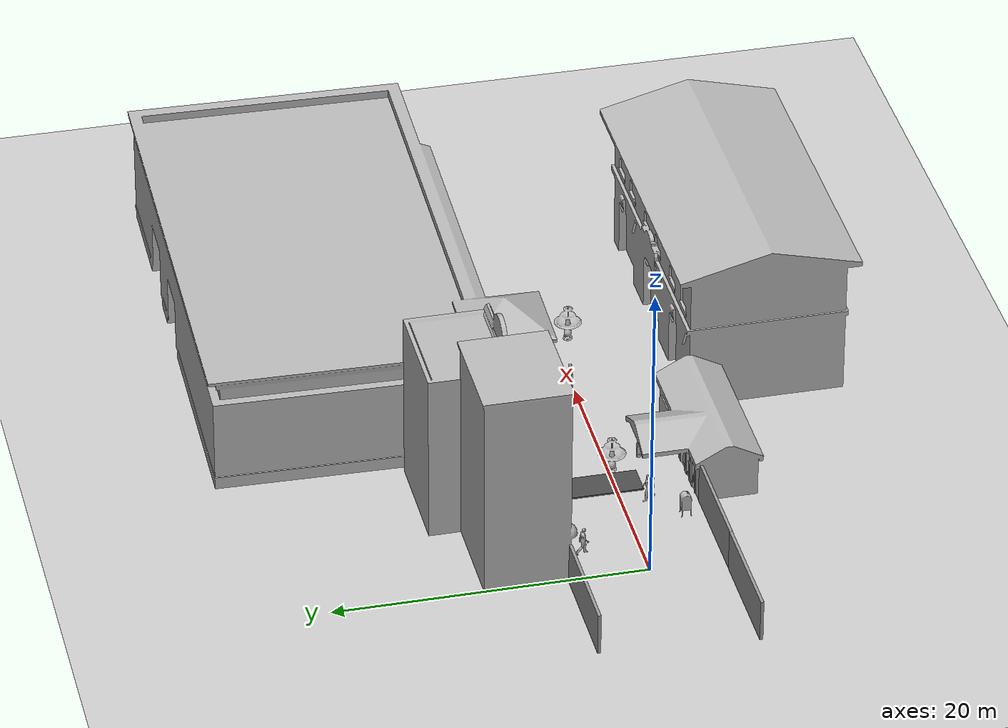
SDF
<sdf version="1.6">
 <world name="default">
  <light name="sun" type="directional">
   <pose>0 0 10 0 -0 0</pose>
   <diffuse>0.8 0.8 0.8 1</diffuse>
   <specular>0.2 0.2 0.2 1</specular>
   <attenuation>
    <range>1000</range>
    <constant>0.9</constant>
    <linear>0.01</linear>
    <quadratic>0.001</quadratic>
   </attenuation>
   <direction>-0.5 0.1 -0.9</direction>
  </light>
  <physics name="default_physics" default="0" type="ode">
   <max_step_size>0.001</max_step_size>
   <real_time_factor>1</real_time_factor>
   <real_time_update_rate>1000</real_time_update_rate>
  </physics>
  <scene><ambient>0.4 0.4 0.4 1</ambient><background>0.7 0.7 0.7 1</background><shadows>0</shadows></scene>
  <magnetic_field>6e-06 2.3e-05 -4.2e-05</magnetic_field>
  <atmosphere type="adiabatic"/>
  <spherical_coordinates>
   <surface_model>EARTH_WGS84</surface_model>
   <latitude_deg>0</latitude_deg>
   <longitude_deg>0</longitude_deg>
   <elevation>0</elevation>
   <heading_deg>0</heading_deg>
  </spherical_coordinates>
  <gravity>0 0 -9.8</gravity>
  <model name="postbox">
   <static>1</static>
   <link name="link">
    <collision name="collision">
     <geometry><mesh><uri>model://postbox/meshes/postbox.dae</uri></mesh></geometry>
    </collision>
    <visual name="visual"><geometry><mesh><uri>model://postbox/meshes/postbox.dae</uri></mesh></geometry></visual>
   </link>
   <pose>5.3446 -3.59465 0 0 -0 0</pose>
  </model>
  <model name="salon">
   <static>1</static>
   <link name="link">
    <collision name="collision">
     <pose>0 0 5.69469 0 -0 0</pose>
     <geometry><box><size>7.21297 5.37875 11.3894</size></box></geometry>
    </collision>
    <visual name="visual">
     <pose>0 -0.903605 0 0 -0 0</pose>
     <geometry><mesh><uri>model://salon/meshes/salon.dae</uri></mesh></geometry>
    </visual>
   </link>
   <pose>10.13 9.79459 0 0 -0 0</pose>
  </model>
  <model name="ground_plane">
   <static>1</static>
   <link name="link">
    <collision name="collision">
     <geometry><plane><normal>0 0 1</normal><size>100 100</size></plane></geometry>
     <surface>
      <contact><collide_bitmask>65535</collide_bitmask></contact>
      <friction><ode><mu>100</mu><mu2>50</mu2></ode></friction>
     </surface>
    </collision>
    <visual name="visual">
     <cast_shadows>0</cast_shadows>
     <geometry><plane><normal>0 0 1</normal><size>100 100</size></plane></geometry>
     <material>
      <script><uri>file://media/materials/scripts/gazebo.material</uri><name>Gazebo/Grey</name></script>
     </material>
    </visual>
   </link>
   <pose>13.0074 4.52832 0 0 -0 0</pose>
  </model>
  <model name="person_standing">
   <link name="link">
    <inertial>
     <pose>0 -0.1 0.95 0 -0 0</pose>
     <mass>80</mass>
     <inertia><ixx>24.88</ixx><ixy>0</ixy><ixz>0</ixz><iyy>25.73</iyy><iyz>0</iyz><izz>2.48</izz></inertia>
    </inertial>
    <collision name="bottom">
     <pose>0 -0.1 0.01 0 -0 0</pose>
     <geometry><box><size>0.5 0.35 0.02</size></box></geometry>
    </collision>
    <collision name="person">
     <pose>0 0 0.02 0.04 -0 0</pose>
     <geometry><mesh><uri>model://person_standing/meshes/standing.dae</uri></mesh></geometry>
    </collision>
    <visual name="visual">
     <pose>0 0 0.02 0.04 -0 0</pose>
     <geometry><mesh><uri>model://person_standing/meshes/standing.dae</uri></mesh></geometry>
    </visual>
   </link>
   <pose>20.2027 0.128716 0.05 1e-06 1e-06 3.11939</pose>
  </model>
  <model name="person_standing_0">
   <link name="link">
    <inertial>
     <pose>0 -0.1 0.95 0 -0 0</pose>
     <mass>80</mass>
     <inertia><ixx>24.88</ixx><ixy>0</ixy><ixz>0</ixz><iyy>25.73</iyy><iyz>0</iyz><izz>2.48</izz></inertia>
    </inertial>
    <collision name="bottom">
     <pose>0 -0.1 0.01 0 -0 0</pose>
     <geometry><box><size>0.5 0.35 0.02</size></box></geometry>
    </collision>
    <collision name="person">
     <pose>0 0 0.02 0.04 -0 0</pose>
     <geometry><mesh><uri>model://person_standing/meshes/standing.dae</uri></mesh></geometry>
    </collision>
    <visual name="visual">
     <pose>0 0 0.02 0.04 -0 0</pose>
     <geometry><mesh><uri>model://person_standing/meshes/standing.dae</uri></mesh></geometry>
    </visual>
   </link>
   <pose>20.5535 0.974537 0.05 -1e-06 -1e-06 0.007158</pose>
  </model>
  <model name="person_walking">
   <link name="link">
    <inertial>
     <pose>0 0 0.95 0 -0 0</pose>
     <mass>80</mass>
     <inertia><ixx>27.82</ixx><ixy>0</ixy><ixz>0</ixz><iyy>24.88</iyy><iyz>0</iyz><izz>4.57</izz></inertia>
    </inertial>
    <collision name="bottom">
     <pose>0 0 0.01 0 -0 0</pose>
     <geometry><box><size>0.35 0.75 0.02</size></box></geometry>
    </collision>
    <collision name="person">
     <pose>0 0 -0.02 0 -0 0</pose>
     <geometry><mesh><uri>model://person_walking/meshes/walking.dae</uri></mesh></geometry>
    </collision>
    <visual name="visual">
     <pose>0 0 -0.02 0 -0 0</pose>
     <geometry><mesh><uri>model://person_walking/meshes/walking.dae</uri></mesh></geometry>
    </visual>
   </link>
   <pose>2.52583 3.67495 0.049999 -2e-06 1e-06 0.023872</pose>
  </model>
  <model name="person_walking_0">
   <link name="link">
    <inertial>
     <pose>0 0 0.95 0 -0 0</pose>
     <mass>80</mass>
     <inertia><ixx>27.82</ixx><ixy>0</ixy><ixz>0</ixz><iyy>24.88</iyy><iyz>0</iyz><izz>4.57</izz></inertia>
    </inertial>
    <collision name="bottom">
     <pose>0 0 0.01 0 -0 0</pose>
     <geometry><box><size>0.35 0.75 0.02</size></box></geometry>
    </collision>
    <collision name="person">
     <pose>0 0 -0.02 0 -0 0</pose>
     <geometry><mesh><uri>model://person_walking/meshes/walking.dae</uri></mesh></geometry>
    </collision>
    <visual name="visual">
     <pose>0 0 -0.02 0 -0 0</pose>
     <geometry><mesh><uri>model://person_walking/meshes/walking.dae</uri></mesh></geometry>
    </visual>
   </link>
   <pose>7.22576 -1.68809 0.05 -1e-06 -0 -3.07545</pose>
  </model>
  <model name="post_office">
   <static>1</static>
   <link name="link">
    <collision name="collision">
     <geometry><mesh><uri>model://post_office/meshes/post_office.dae</uri></mesh></geometry>
    </collision>
    <visual name="visual">
     <geometry><mesh><uri>model://post_office/meshes/post_office.dae</uri></mesh></geometry>
    </visual>
   </link>
   <pose>11.4971 -6.62369 0 0 -0 0</pose>
  </model>
  <model name="asphalt_plane">
   <static>1</static>
   <link name="link">
    <collision name="collision"><geometry><box><size>2.09106 5.20002 0.1</size></box></geometry></collision>
    <visual name="visual">
     <cast_shadows>0</cast_shadows>
     <geometry><box><size>2.09106 5.20002 0.1</size></box></geometry>
     <material>
      <script>
       <uri>model://asphalt_plane/materials/scripts</uri>
       <uri>model://asphalt_plane/materials/textures</uri>
       <name>vrc/asphalt</name>
      </script>
     </material>
    </visual>
   </link>
   <pose>9.49051 0.894662 0 0 -0 0</pose>
  </model>
  <model name="fire_station">
   <static>1</static>
   <link name="link">
    <collision name="main">
     <pose>0 -0.135 5 0 -0 0</pose>
     <geometry><box><size>19.98 9.68 10</size></box></geometry>
    </collision>
    <collision name="front_top">
     <pose>0 4.957 7 0 -0 0</pose>
     <geometry><box><size>20 0.515 6</size></box></geometry>
    </collision>
    <collision name="column_0">
     <pose>9.333 4.957 2 0 -0 0</pose>
     <geometry><box><size>1.315 0.515 4</size></box></geometry>
    </collision>
    <collision name="column_1">
     <pose>3.33 4.957 2 0 -0 0</pose>
     <geometry><box><size>2.63 0.515 4</size></box></geometry>
    </collision>
    <collision name="column_2">
     <pose>-3.33 4.957 2 0 -0 0</pose>
     <geometry><box><size>2.63 0.515 4</size></box></geometry>
    </collision>
    <collision name="column_3">
     <pose>-9.333 4.957 2 0 -0 0</pose>
     <geometry><box><size>1.315 0.515 4</size></box></geometry>
    </collision>
    <collision name="roof_back">
     <pose>0 -2.742 10.467 0.25 -0 0</pose>
     <geometry><box><size>21.47 6.12 0.28</size></box></geometry>
    </collision>
    <collision name="roof_front">
     <pose>0 3.12 10.467 -0.25 0 0</pose>
     <geometry><box><size>21.47 6.12 0.28</size></box></geometry>
    </collision>
    <collision name="roof_base">
     <pose>0 0.188 9.705 0 -0 0</pose>
     <geometry><box><size>21.47 11.86 0.28</size></box></geometry>
    </collision>
    <collision name="roof_filling_0">
     <pose>0 0.188 9.985 0 -0 0</pose>
     <geometry><box><size>21.47 9.53 0.28</size></box></geometry>
    </collision>
    <collision name="roof_filling_1">
     <pose>0 0.188 10.14 0 -0 0</pose>
     <geometry><box><size>21.47 8.41 0.28</size></box></geometry>
    </collision>
    <collision name="roof_filling_2">
     <pose>0 0.188 10.42 0 -0 0</pose>
     <geometry><box><size>21.47 6.25 0.28</size></box></geometry>
    </collision>
    <collision name="roof_filling_3">
     <pose>0 0.188 10.7 0 -0 0</pose>
     <geometry><box><size>21.47 4.05 0.28</size></box></geometry>
    </collision>
    <collision name="roof_filling_4">
     <pose>0 0.188 10.98 0 -0 0</pose>
     <geometry><box><size>21.47 1.83 0.28</size></box></geometry>
    </collision>
    <visual name="visual">
     <geometry><mesh><uri>model://fire_station/meshes/fire_station.dae</uri></mesh></geometry>
    </visual>
   </link>
   <pose>26.6985 -11.9199 0 0 -0 0</pose>
  </model>
  <model name="first_2015_trash_can">
   <link name="link">
    <inertial>
     <pose>0 0 0.3683 0 -0 0</pose>
     <mass>4.83076</mass>
     <inertia>
      <ixx>0.281534</ixx>
      <ixy>0</ixy>
      <ixz>0</ixz>
      <iyy>0.281534</iyy>
      <iyz>0</iyz>
      <izz>0.126223</izz>
     </inertia>
    </inertial>
    <visual name="visual">
     <geometry><mesh><uri>model://first_2015_trash_can/meshes/trash_can.dae</uri></mesh></geometry>
    </visual>
    <collision name="collision">
     <geometry><mesh><uri>model://first_2015_trash_can/meshes/trash_can.dae</uri></mesh></geometry>
    </collision>
   </link>
   <pose>7.00988 6.83396 0.073262 0.071833 0.078797 -0.145448</pose>
  </model>
  <model name="fountain">
   <static>1</static>
   <link name="link">
    <collision name="collision">
     <geometry><mesh><uri>model://fountain/meshes/fountain.dae</uri></mesh></geometry>
    </collision>
    <visual name="visual">
     <geometry><mesh><uri>model://fountain/meshes/fountain.dae</uri></mesh></geometry>
    </visual>
   </link>
   <pose>26 -1 0 0 -0 0</pose>
  </model>
  <model name="grocery_store">
   <static>1</static>
   <link name="link">
    <collision name="collision">
     <pose>0 0 4.04605 0 -0 0</pose>
     <geometry><box><size>32.1985 17.5425 8.09209</size></box></geometry>
    </collision>
    <visual name="visual">
     <pose>0 -1.96155 0 0 -0 0</pose>
     <geometry><mesh><uri>model://grocery_store/meshes/grocery_store.dae</uri></mesh></geometry>
    </visual>
   </link>
   <pose>30.2818 15.2736 0 0 -0 3.11799</pose>
  </model>
  <model name="law_office">
   <static>1</static>
   <link name="link">
    <collision name="collision">
     <pose>0 0 6.96244 0 -0 0</pose>
     <geometry><box><size>6.84401 5.43165 13.9249</size></box></geometry>
    </collision>
    <visual name="visual">
     <geometry><mesh><uri>model://law_office/meshes/law_office.dae</uri></mesh></geometry>
    </visual>
   </link>
   <pose>3.34954 7.72892 0 0 -0 0</pose>
  </model>
  <model name="grey_wall">
   <static>1</static>
   <link name="link">
    <pose>0 0 1.4 0 -0 0</pose>
    <collision name="collision"><geometry><box><size>7.5 0.2 2.8</size></box></geometry></collision>
    <visual name="visual">
     <cast_shadows>0</cast_shadows>
     <geometry><box><size>7.5 0.2 2.8</size></box></geometry>
     <material>
      <script>
       <uri>model://grey_wall/materials/scripts</uri>
       <uri>model://grey_wall/materials/textures</uri>
       <name>vrc/grey_wall</name>
      </script>
     </material>
    </visual>
   </link>
   <pose>2.7814 -4.82123 0 0 -0 0</pose>
  </model>
  <model name="grey_wall_clone">
   <static>1</static>
   <link name="link">
    <pose>0 0 1.4 0 -0 0</pose>
    <collision name="collision"><geometry><box><size>7.5 0.2 2.8</size></box></geometry></collision>
    <visual name="visual">
     <cast_shadows>0</cast_shadows>
     <geometry><box><size>7.5 0.2 2.8</size></box></geometry>
     <material>
      <script>
       <uri>model://grey_wall/materials/scripts</uri>
       <uri>model://grey_wall/materials/textures</uri>
       <name>vrc/grey_wall</name>
      </script>
     </material>
    </visual>
   </link>
   <pose>-4.67837 -4.80562 0 0 -0 0</pose>
  </model>
  <model name="grey_wall_clone_0">
   <static>1</static>
   <link name="link">
    <pose>0 0 1.4 0 -0 0</pose>
    <collision name="collision"><geometry><box><size>7.5 0.2 2.8</size></box></geometry></collision>
    <visual name="visual">
     <cast_shadows>0</cast_shadows>
     <geometry><box><size>7.5 0.2 2.8</size></box></geometry>
     <material>
      <script>
       <uri>model://grey_wall/materials/scripts</uri>
       <uri>model://grey_wall/materials/textures</uri>
       <name>vrc/grey_wall</name>
      </script>
     </material>
    </visual>
   </link>
   <pose>-3.85788 5.07261 0 0 -0 0</pose>
  </model>
  <model name="fountain_clone">
   <static>1</static>
   <link name="link">
    <collision name="collision">
     <geometry><mesh><uri>model://fountain/meshes/fountain.dae</uri></mesh></geometry>
    </collision>
    <visual name="visual">
     <geometry><mesh><uri>model://fountain/meshes/fountain.dae</uri></mesh></geometry>
    </visual>
   </link>
   <pose>10.932 -0.244461 0 0 -0 0</pose>
  </model>
 </world>
</sdf>
